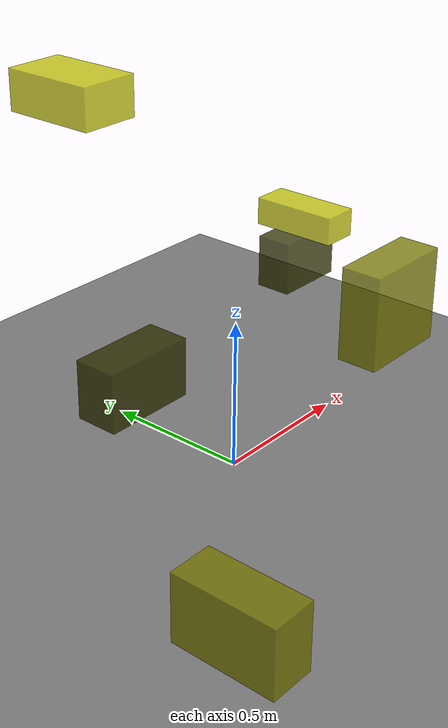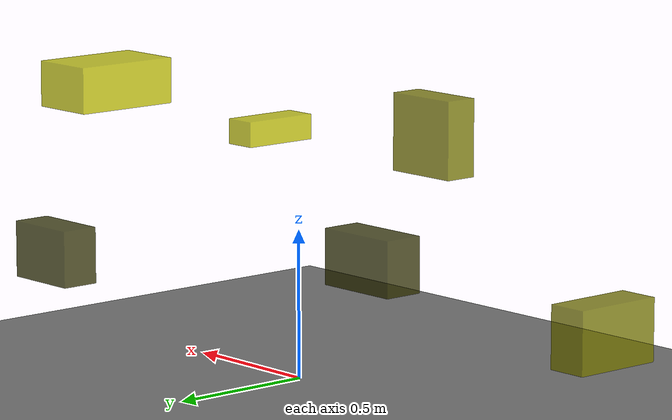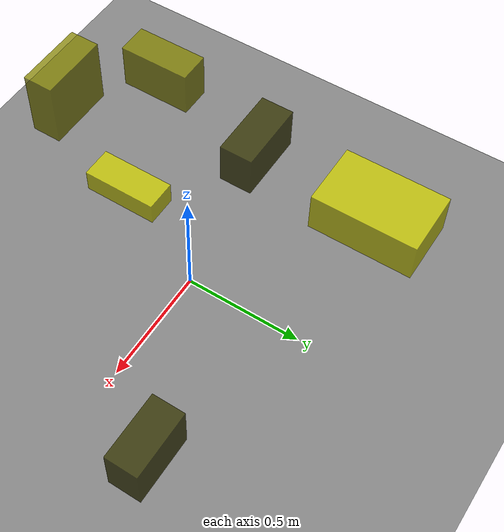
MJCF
<?xml version="1.0"?>
<mujoco model="obstacle_scene">
  <compiler angle="radian" coordinate="local"/>
  <option timestep="0.001" gravity="0 0 -9.81"/>

  <asset>
    <material name="obstacle_mat" rgba="0.8 0.8 0.0 0.8"/>
    <material name="ground_mat" rgba="0.5 0.5 0.5 1"/>
  </asset>

  <worldbody>
    <!-- Ground plane -->
    <geom name="ground" type="plane" size="3 3 0.1" material="ground_mat"/>

    <!-- Obstacles -->
    <body name="obstacle_0" pos="0.812033 0.385019 0.354895">
      <geom name="obs_0" type="box" size="0.134052 0.065772 0.096306" rgba="0.2 0.2 0.0 0.8"/>
    </body>
    <body name="obstacle_1" pos="-0.761530 -0.651776 0.183677">
      <geom name="obs_1" type="box" size="0.072301 0.165297 0.108775" rgba="0.5 0.5 0.0 0.8"/>
    </body>
    <body name="obstacle_2" pos="0.228821 -0.073229 0.800045">
      <geom name="obs_2" type="box" size="0.055223 0.132670 0.041984" rgba="0.8 0.8 0.0 0.8"/>
    </body>
    <body name="obstacle_3" pos="-0.406799 0.043300 0.466035">
      <geom name="obs_3" type="box" size="0.149457 0.068790 0.092789" rgba="0.2 0.2 0.0 0.8"/>
    </body>
    <body name="obstacle_4" pos="-0.044541 -0.560029 0.760409">
      <geom name="obs_4" type="box" size="0.135851 0.057939 0.133368" rgba="0.5 0.5 0.0 0.8"/>
    </body>
    <body name="obstacle_5" pos="0.062034 0.744961 1.061647">
      <geom name="obs_5" type="box" size="0.108251 0.173640 0.071951" rgba="0.8 0.8 0.0 0.8"/>
    </body>
  </worldbody>
</mujoco>
